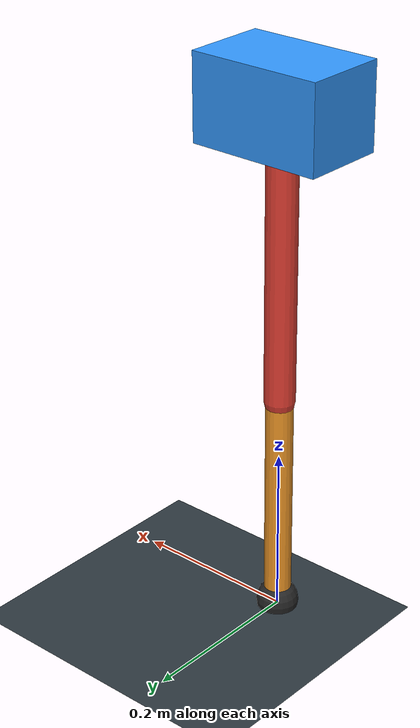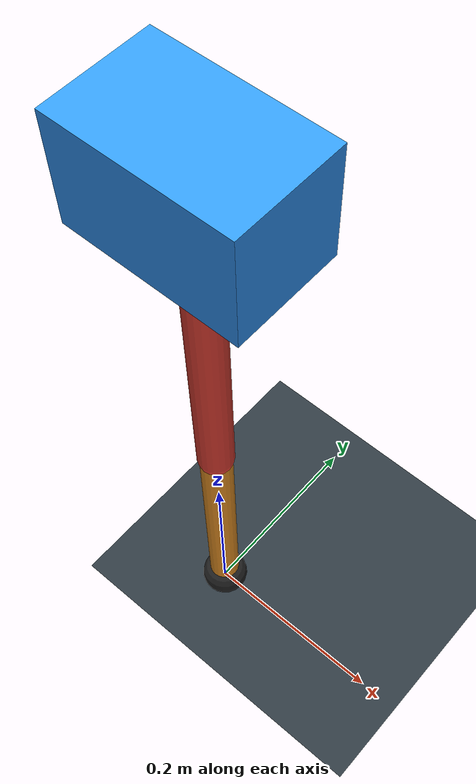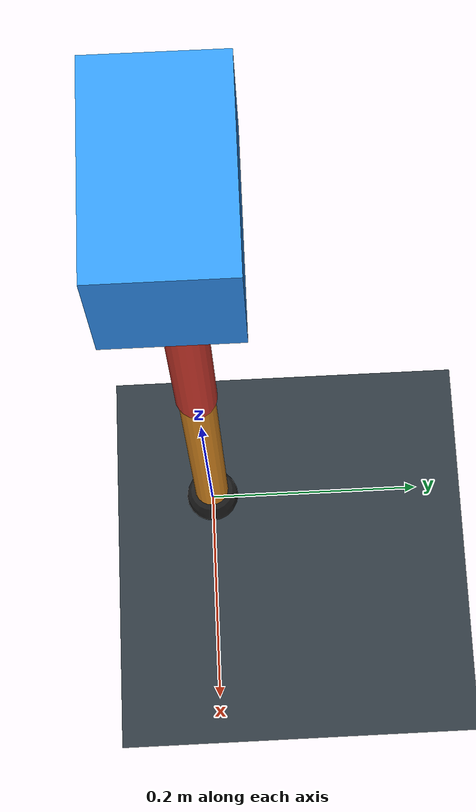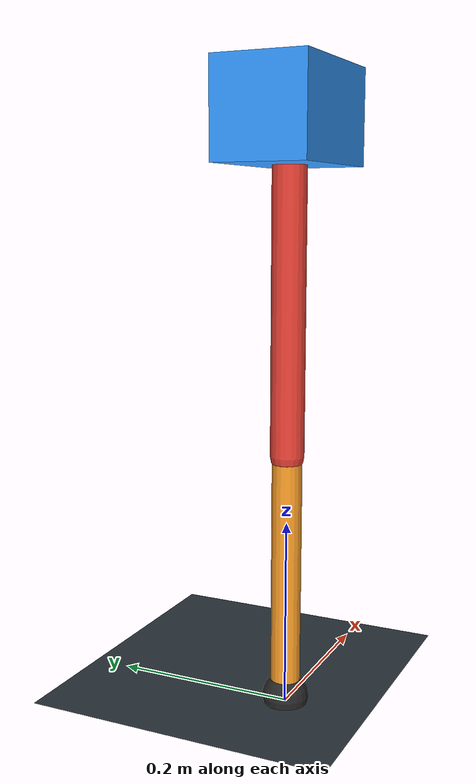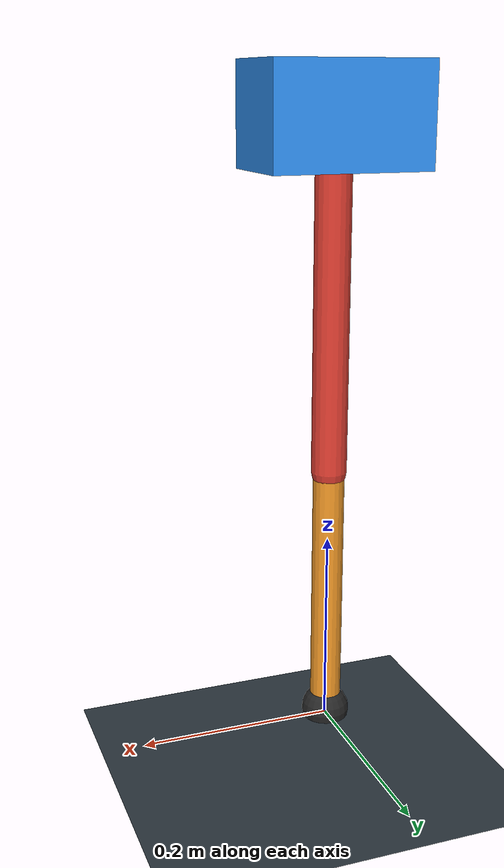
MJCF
<mujoco model="single_axis_two_bar">
  <compiler angle="radian" inertiafromgeom="true"/>
  <option timestep="0.001" integrator="implicitfast" gravity="0 0 -9.81"/>
  <default>
    <joint damping="0.08"/>
    <geom friction="1.2 0.01 0.0001" condim="3"/>
  </default>
  <worldbody>
    <geom name="floor" type="plane" size="5 5 0.1" rgba="0.18 0.22 0.25 1"/>
    <body name="carriage" pos="0 0 0.6220023958335713">
      <joint name="pole_slide" type="slide" axis="0 0 1"/>
      <geom name="payload" type="box" size="0.08 0.05 0.05" mass="2.384171613695205" rgba="0.2 0.6 1 1"/>
      <body name="thigh" pos="0 0 0">
        <joint name="hip" type="hinge" axis="0 1 0"/>
        <geom name="thigh_link" type="capsule" fromto="0 0 0 0 0 -0.34857804575823825" size="0.018" mass="0.24836646365523496" rgba="0.9 0.25 0.2 1"/>
        <body name="shank" pos="0 0 -0.34857804575823825">
          <joint name="knee" type="hinge" axis="0 1 0"/>
          <geom name="shank_link" type="capsule" fromto="0 0 0 0 0 -0.26688834169905173" size="0.016" mass="0.19016147007886214" rgba="0.95 0.6 0.15 1"/>
          <geom name="foot" type="sphere" pos="0 0 -0.26688834169905173" size="0.025" mass="0.03" rgba="0.15 0.15 0.15 1"/>
          <site name="toe" pos="0 0 -0.26688834169905173" size="0.008"/>
        </body>
      </body>
    </body>
  </worldbody>
  <actuator>
    <motor name="hip_motor" joint="hip" ctrlrange="-34.44931145056509 34.44931145056509"/>
    <motor name="knee_motor" joint="knee" ctrlrange="-95.1490663420492 95.1490663420492"/>
  </actuator>
</mujoco>
